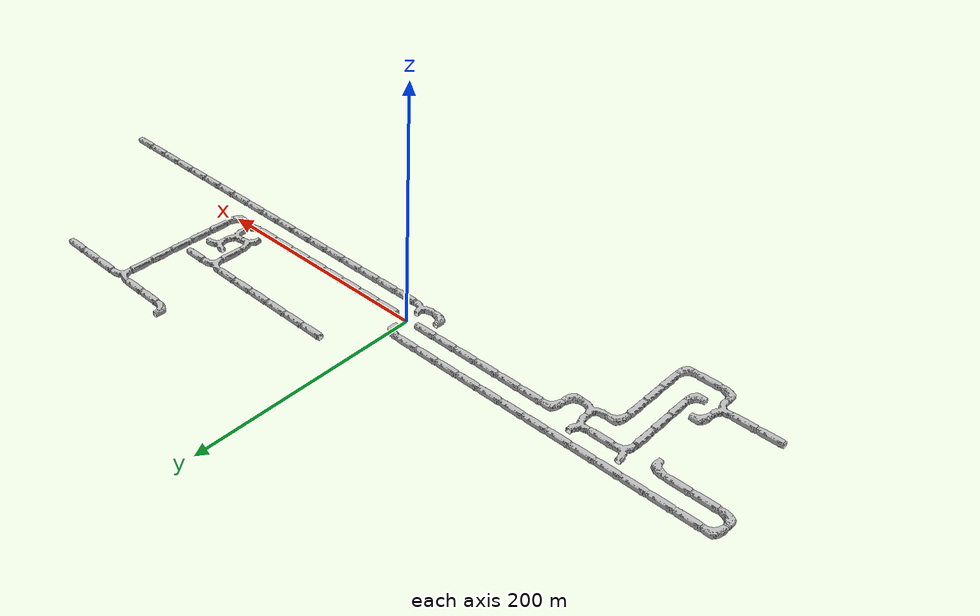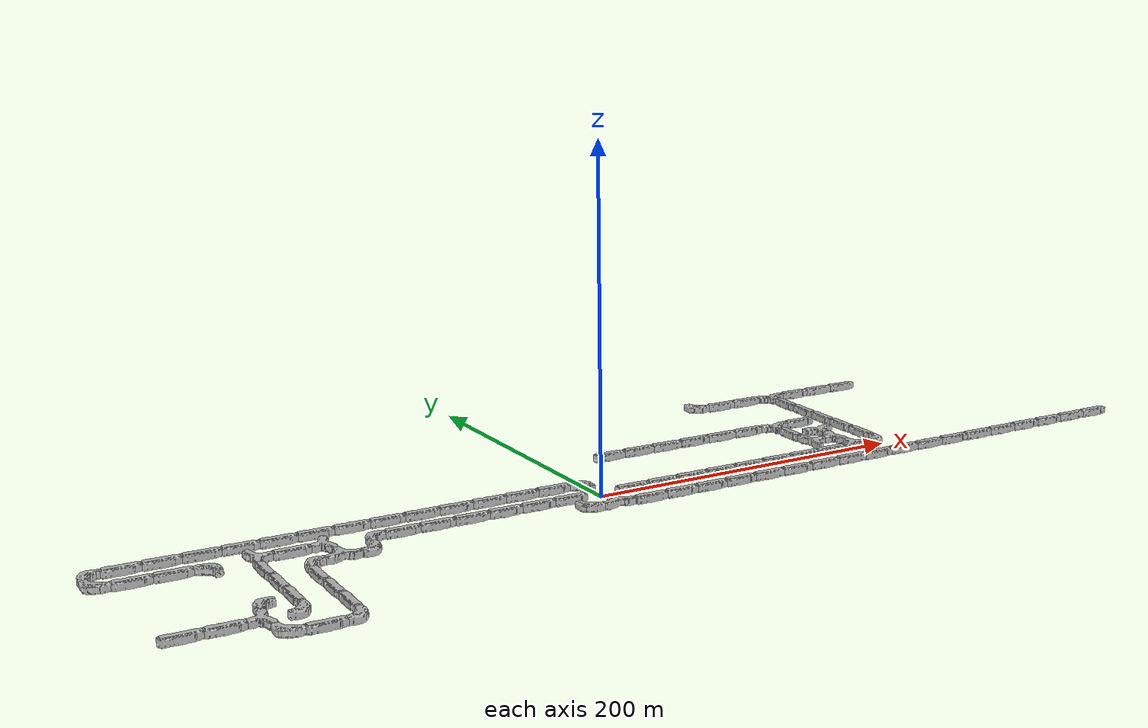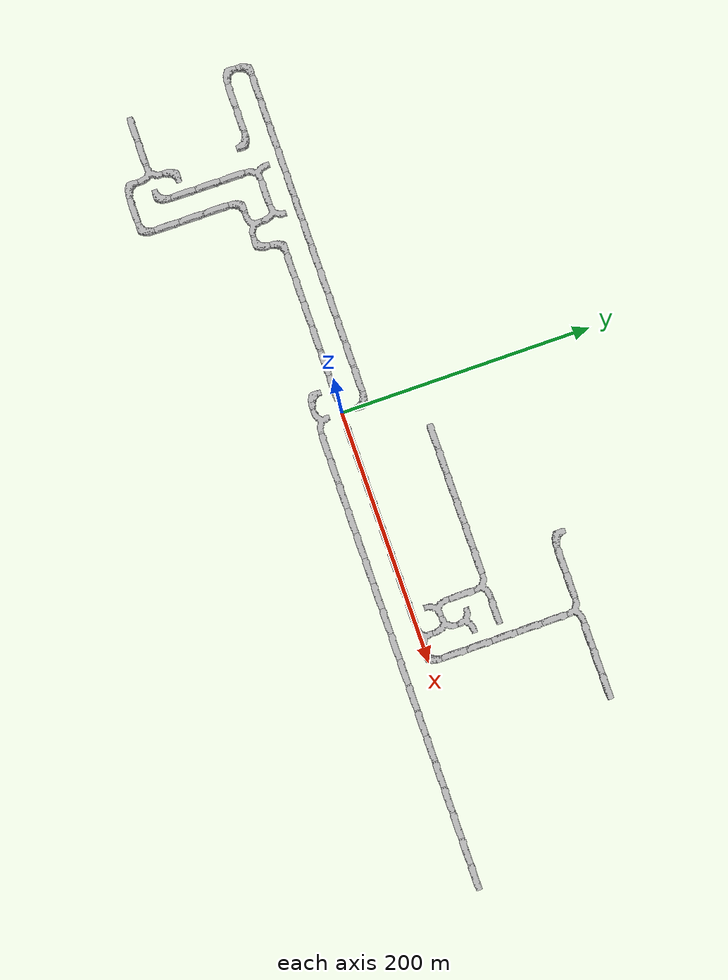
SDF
<sdf version="1.6">
 <world name="cave_2000_0">
  <include>
   <static>true</static>
   <name>cave_1_0</name>
   <pose>20 0 0 0 0 1.5707963267948966</pose>
   <uri>model://cave_straight_20m</uri>
  </include>
  <include>
   <static>true</static>
   <name>cave_2_0</name>
   <pose>40 0 0 0 0 1.5707963267948966</pose>
   <uri>model://cave_straight_20m</uri>
  </include>
  <include>
   <static>true</static>
   <name>cave_3_0</name>
   <pose>60 0 0 0 0 1.5707963267948966</pose>
   <uri>model://cave_straight_20m</uri>
  </include>
  <include>
   <static>true</static>
   <name>cave_4_0</name>
   <pose>80 0 0 0 0 1.5707963267948966</pose>
   <uri>model://cave_straight_20m</uri>
  </include>
  <include>
   <static>true</static>
   <name>cave_5_0</name>
   <pose>100 0 0 0 0 1.5707963267948966</pose>
   <uri>model://cave_straight_20m</uri>
  </include>
  <include>
   <static>true</static>
   <name>cave_6_0</name>
   <pose>120 0 0 0 0 1.5707963267948966</pose>
   <uri>model://cave_straight_20m</uri>
  </include>
  <include>
   <static>true</static>
   <name>cave_7_0</name>
   <pose>140 0 0 0 0 1.5707963267948966</pose>
   <uri>model://cave_straight_20m</uri>
  </include>
  <include>
   <static>true</static>
   <name>cave_8_0</name>
   <pose>160 0 0 0 0 1.5707963267948966</pose>
   <uri>model://cave_straight_20m</uri>
  </include>
  <include>
   <static>true</static>
   <name>cave_9_0</name>
   <pose>180 0 0 0 0 0.0</pose>
   <uri>model://cave_3way_20m</uri>
  </include>
  <include>
   <static>true</static>
   <name>cave_10_0</name>
   <pose>200 0 0 0 0 1.5707963267948966</pose>
   <uri>model://cave_L_20m</uri>
  </include>
  <include>
   <static>true</static>
   <name>cave_10_1</name>
   <pose>200 20 0 0 0 0.0</pose>
   <uri>model://cave_straight_20m</uri>
  </include>
  <include>
   <static>true</static>
   <name>cave_10_2</name>
   <pose>200 40 0 0 0 0.0</pose>
   <uri>model://cave_straight_20m</uri>
  </include>
  <include>
   <static>true</static>
   <name>cave_10_3</name>
   <pose>200 60 0 0 0 0.0</pose>
   <uri>model://cave_straight_20m</uri>
  </include>
  <include>
   <static>true</static>
   <name>cave_10_4</name>
   <pose>200 80 0 0 0 0.0</pose>
   <uri>model://cave_straight_20m</uri>
  </include>
  <include>
   <static>true</static>
   <name>cave_10_5</name>
   <pose>200 100 0 0 0 0.0</pose>
   <uri>model://cave_straight_20m</uri>
  </include>
  <include>
   <static>true</static>
   <name>cave_10_6</name>
   <pose>200 120 0 0 0 3.141592653589793</pose>
   <uri>model://cave_3way_20m</uri>
  </include>
  <include>
   <static>true</static>
   <name>cave_11_6</name>
   <pose>220 120 0 0 0 1.5707963267948966</pose>
   <uri>model://cave_straight_20m</uri>
  </include>
  <include>
   <static>true</static>
   <name>cave_12_6</name>
   <pose>240 120 0 0 0 1.5707963267948966</pose>
   <uri>model://cave_straight_20m</uri>
  </include>
  <include>
   <static>true</static>
   <name>cave_13_6</name>
   <pose>260 120 0 0 0 1.5707963267948966</pose>
   <uri>model://cave_straight_20m</uri>
  </include>
  <include>
   <static>true</static>
   <name>cave_9_6</name>
   <pose>180 120 0 0 0 1.5707963267948966</pose>
   <uri>model://cave_straight_20m</uri>
  </include>
  <include>
   <static>true</static>
   <name>cave_8_6</name>
   <pose>160 120 0 0 0 1.5707963267948966</pose>
   <uri>model://cave_straight_20m</uri>
  </include>
  <include>
   <static>true</static>
   <name>cave_7_6</name>
   <pose>140 120 0 0 0 0.0</pose>
   <uri>model://cave_L_20m</uri>
  </include>
  <include>
   <static>true</static>
   <name>cave_9_1</name>
   <pose>180 20 0 0 0 1.5707963267948966</pose>
   <uri>model://cave_3way_20m</uri>
  </include>
  <include>
   <static>true</static>
   <name>cave_8_1</name>
   <pose>160 20 0 0 0 -1.5707963267948966</pose>
   <uri>model://cave_3way_20m</uri>
  </include>
  <include>
   <static>true</static>
   <name>cave_8_2</name>
   <pose>160 40 0 0 0 0.0</pose>
   <uri>model://cave_straight_20m</uri>
  </include>
  <include>
   <static>true</static>
   <name>cave_8_3</name>
   <pose>160 60 0 0 0 3.141592653589793</pose>
   <uri>model://cave_3way_20m</uri>
  </include>
  <include>
   <static>true</static>
   <name>cave_9_3</name>
   <pose>180 60 0 0 0 1.5707963267948966</pose>
   <uri>model://cave_straight_20m</uri>
  </include>
  <include>
   <static>true</static>
   <name>cave_7_3</name>
   <pose>140 60 0 0 0 1.5707963267948966</pose>
   <uri>model://cave_straight_20m</uri>
  </include>
  <include>
   <static>true</static>
   <name>cave_6_3</name>
   <pose>120 60 0 0 0 1.5707963267948966</pose>
   <uri>model://cave_straight_20m</uri>
  </include>
  <include>
   <static>true</static>
   <name>cave_5_3</name>
   <pose>100 60 0 0 0 1.5707963267948966</pose>
   <uri>model://cave_straight_20m</uri>
  </include>
  <include>
   <static>true</static>
   <name>cave_4_3</name>
   <pose>80 60 0 0 0 1.5707963267948966</pose>
   <uri>model://cave_straight_20m</uri>
  </include>
  <include>
   <static>true</static>
   <name>cave_3_3</name>
   <pose>60 60 0 0 0 1.5707963267948966</pose>
   <uri>model://cave_straight_20m</uri>
  </include>
  <include>
   <static>true</static>
   <name>cave_2_3</name>
   <pose>40 60 0 0 0 1.5707963267948966</pose>
   <uri>model://cave_straight_20m</uri>
  </include>
  <include>
   <static>true</static>
   <name>cave_9_2</name>
   <pose>180 40 0 0 0 3.141592653589793</pose>
   <uri>model://cave_3way_20m</uri>
  </include>
  <include>
   <static>true</static>
   <name>cave_0_-1</name>
   <pose>0 -20 0 0 0 0.0</pose>
   <uri>model://cave_3way_20m</uri>
  </include>
  <include>
   <static>true</static>
   <name>cave_1_-1</name>
   <pose>20 -20 0 0 0 1.5707963267948966</pose>
   <uri>model://cave_straight_20m</uri>
  </include>
  <include>
   <static>true</static>
   <name>cave_2_-1</name>
   <pose>40 -20 0 0 0 1.5707963267948966</pose>
   <uri>model://cave_straight_20m</uri>
  </include>
  <include>
   <static>true</static>
   <name>cave_3_-1</name>
   <pose>60 -20 0 0 0 1.5707963267948966</pose>
   <uri>model://cave_straight_20m</uri>
  </include>
  <include>
   <static>true</static>
   <name>cave_4_-1</name>
   <pose>80 -20 0 0 0 1.5707963267948966</pose>
   <uri>model://cave_straight_20m</uri>
  </include>
  <include>
   <static>true</static>
   <name>cave_5_-1</name>
   <pose>100 -20 0 0 0 1.5707963267948966</pose>
   <uri>model://cave_straight_20m</uri>
  </include>
  <include>
   <static>true</static>
   <name>cave_6_-1</name>
   <pose>120 -20 0 0 0 1.5707963267948966</pose>
   <uri>model://cave_straight_20m</uri>
  </include>
  <include>
   <static>true</static>
   <name>cave_7_-1</name>
   <pose>140 -20 0 0 0 1.5707963267948966</pose>
   <uri>model://cave_straight_20m</uri>
  </include>
  <include>
   <static>true</static>
   <name>cave_8_-1</name>
   <pose>160 -20 0 0 0 1.5707963267948966</pose>
   <uri>model://cave_straight_20m</uri>
  </include>
  <include>
   <static>true</static>
   <name>cave_9_-1</name>
   <pose>180 -20 0 0 0 1.5707963267948966</pose>
   <uri>model://cave_straight_20m</uri>
  </include>
  <include>
   <static>true</static>
   <name>cave_10_-1</name>
   <pose>200 -20 0 0 0 1.5707963267948966</pose>
   <uri>model://cave_straight_20m</uri>
  </include>
  <include>
   <static>true</static>
   <name>cave_11_-1</name>
   <pose>220 -20 0 0 0 1.5707963267948966</pose>
   <uri>model://cave_straight_20m</uri>
  </include>
  <include>
   <static>true</static>
   <name>cave_12_-1</name>
   <pose>240 -20 0 0 0 1.5707963267948966</pose>
   <uri>model://cave_straight_20m</uri>
  </include>
  <include>
   <static>true</static>
   <name>cave_13_-1</name>
   <pose>260 -20 0 0 0 1.5707963267948966</pose>
   <uri>model://cave_straight_20m</uri>
  </include>
  <include>
   <static>true</static>
   <name>cave_14_-1</name>
   <pose>280 -20 0 0 0 1.5707963267948966</pose>
   <uri>model://cave_straight_20m</uri>
  </include>
  <include>
   <static>true</static>
   <name>cave_15_-1</name>
   <pose>300 -20 0 0 0 1.5707963267948966</pose>
   <uri>model://cave_straight_20m</uri>
  </include>
  <include>
   <static>true</static>
   <name>cave_16_-1</name>
   <pose>320 -20 0 0 0 1.5707963267948966</pose>
   <uri>model://cave_straight_20m</uri>
  </include>
  <include>
   <static>true</static>
   <name>cave_17_-1</name>
   <pose>340 -20 0 0 0 1.5707963267948966</pose>
   <uri>model://cave_straight_20m</uri>
  </include>
  <include>
   <static>true</static>
   <name>cave_18_-1</name>
   <pose>360 -20 0 0 0 1.5707963267948966</pose>
   <uri>model://cave_straight_20m</uri>
  </include>
  <include>
   <static>true</static>
   <name>cave_-1_-1</name>
   <pose>-20 -20 0 0 0 0.0</pose>
   <uri>model://cave_L_20m</uri>
  </include>
  <include>
   <static>true</static>
   <name>cave_-1_0</name>
   <pose>-20 0 0 0 0 1.5707963267948966</pose>
   <uri>model://cave_straight_20m</uri>
  </include>
  <include>
   <static>true</static>
   <name>cave_-2_0</name>
   <pose>-40 0 0 0 0 1.5707963267948966</pose>
   <uri>model://cave_straight_20m</uri>
  </include>
  <include>
   <static>true</static>
   <name>cave_-3_0</name>
   <pose>-60 0 0 0 0 1.5707963267948966</pose>
   <uri>model://cave_straight_20m</uri>
  </include>
  <include>
   <static>true</static>
   <name>cave_-4_0</name>
   <pose>-80 0 0 0 0 1.5707963267948966</pose>
   <uri>model://cave_straight_20m</uri>
  </include>
  <include>
   <static>true</static>
   <name>cave_-5_0</name>
   <pose>-100 0 0 0 0 1.5707963267948966</pose>
   <uri>model://cave_straight_20m</uri>
  </include>
  <include>
   <static>true</static>
   <name>cave_-6_0</name>
   <pose>-120 0 0 0 0 1.5707963267948966</pose>
   <uri>model://cave_straight_20m</uri>
  </include>
  <include>
   <static>true</static>
   <name>cave_-7_0</name>
   <pose>-140 0 0 0 0 -1.5707963267948966</pose>
   <uri>model://cave_L_20m</uri>
  </include>
  <include>
   <static>true</static>
   <name>cave_-7_-1</name>
   <pose>-140 -20 0 0 0 1.5707963267948966</pose>
   <uri>model://cave_L_20m</uri>
  </include>
  <include>
   <static>true</static>
   <name>cave_-8_-1</name>
   <pose>-160 -20 0 0 0 0.0</pose>
   <uri>model://cave_3way_20m</uri>
  </include>
  <include>
   <static>true</static>
   <name>cave_-9_-1</name>
   <pose>-180 -20 0 0 0 -1.5707963267948966</pose>
   <uri>model://cave_L_20m</uri>
  </include>
  <include>
   <static>true</static>
   <name>cave_-9_-2</name>
   <pose>-180 -40 0 0 0 0.0</pose>
   <uri>model://cave_straight_20m</uri>
  </include>
  <include>
   <static>true</static>
   <name>cave_-9_-3</name>
   <pose>-180 -60 0 0 0 0.0</pose>
   <uri>model://cave_straight_20m</uri>
  </include>
  <include>
   <static>true</static>
   <name>cave_-9_-4</name>
   <pose>-180 -80 0 0 0 0.0</pose>
   <uri>model://cave_straight_20m</uri>
  </include>
  <include>
   <static>true</static>
   <name>cave_-9_-5</name>
   <pose>-180 -100 0 0 0 1.5707963267948966</pose>
   <uri>model://cave_L_20m</uri>
  </include>
  <include>
   <static>true</static>
   <name>cave_-10_-5</name>
   <pose>-200 -100 0 0 0 1.5707963267948966</pose>
   <uri>model://cave_straight_20m</uri>
  </include>
  <include>
   <static>true</static>
   <name>cave_-11_-5</name>
   <pose>-220 -100 0 0 0 0.0</pose>
   <uri>model://cave_L_20m</uri>
  </include>
  <include>
   <static>true</static>
   <name>cave_-11_-4</name>
   <pose>-220 -80 0 0 0 1.5707963267948966</pose>
   <uri>model://cave_3way_20m</uri>
  </include>
  <include>
   <static>true</static>
   <name>cave_-12_-4</name>
   <pose>-240 -80 0 0 0 1.5707963267948966</pose>
   <uri>model://cave_straight_20m</uri>
  </include>
  <include>
   <static>true</static>
   <name>cave_-13_-4</name>
   <pose>-260 -80 0 0 0 1.5707963267948966</pose>
   <uri>model://cave_straight_20m</uri>
  </include>
  <include>
   <static>true</static>
   <name>cave_-11_-3</name>
   <pose>-220 -60 0 0 0 -1.5707963267948966</pose>
   <uri>model://cave_L_20m</uri>
  </include>
  <include>
   <static>true</static>
   <name>cave_-8_0</name>
   <pose>-160 0 0 0 0 1.5707963267948966</pose>
   <uri>model://cave_3way_20m</uri>
  </include>
  <include>
   <static>true</static>
   <name>cave_-9_0</name>
   <pose>-180 0 0 0 0 1.5707963267948966</pose>
   <uri>model://cave_straight_20m</uri>
  </include>
  <include>
   <static>true</static>
   <name>cave_-10_0</name>
   <pose>-200 0 0 0 0 -1.5707963267948966</pose>
   <uri>model://cave_3way_20m</uri>
  </include>
  <include>
   <static>true</static>
   <name>cave_-10_-1</name>
   <pose>-200 -20 0 0 0 0.0</pose>
   <uri>model://cave_straight_20m</uri>
  </include>
  <include>
   <static>true</static>
   <name>cave_-10_-2</name>
   <pose>-200 -40 0 0 0 0.0</pose>
   <uri>model://cave_straight_20m</uri>
  </include>
  <include>
   <static>true</static>
   <name>cave_-10_-3</name>
   <pose>-200 -60 0 0 0 0.0</pose>
   <uri>model://cave_straight_20m</uri>
  </include>
  <include>
   <static>true</static>
   <name>cave_-10_-4</name>
   <pose>-200 -80 0 0 0 1.5707963267948966</pose>
   <uri>model://cave_L_20m</uri>
  </include>
  <include>
   <static>true</static>
   <name>cave_0_1</name>
   <pose>0 20 0 0 0 3.141592653589793</pose>
   <uri>model://cave_L_20m</uri>
  </include>
  <include>
   <static>true</static>
   <name>cave_-1_1</name>
   <pose>-20 20 0 0 0 1.5707963267948966</pose>
   <uri>model://cave_straight_20m</uri>
  </include>
  <include>
   <static>true</static>
   <name>cave_-2_1</name>
   <pose>-40 20 0 0 0 1.5707963267948966</pose>
   <uri>model://cave_straight_20m</uri>
  </include>
  <include>
   <static>true</static>
   <name>cave_-3_1</name>
   <pose>-60 20 0 0 0 1.5707963267948966</pose>
   <uri>model://cave_straight_20m</uri>
  </include>
  <include>
   <static>true</static>
   <name>cave_-4_1</name>
   <pose>-80 20 0 0 0 1.5707963267948966</pose>
   <uri>model://cave_straight_20m</uri>
  </include>
  <include>
   <static>true</static>
   <name>cave_-5_1</name>
   <pose>-100 20 0 0 0 1.5707963267948966</pose>
   <uri>model://cave_straight_20m</uri>
  </include>
  <include>
   <static>true</static>
   <name>cave_-6_1</name>
   <pose>-120 20 0 0 0 1.5707963267948966</pose>
   <uri>model://cave_straight_20m</uri>
  </include>
  <include>
   <static>true</static>
   <name>cave_-7_1</name>
   <pose>-140 20 0 0 0 1.5707963267948966</pose>
   <uri>model://cave_straight_20m</uri>
  </include>
  <include>
   <static>true</static>
   <name>cave_-8_1</name>
   <pose>-160 20 0 0 0 1.5707963267948966</pose>
   <uri>model://cave_straight_20m</uri>
  </include>
  <include>
   <static>true</static>
   <name>cave_-9_1</name>
   <pose>-180 20 0 0 0 1.5707963267948966</pose>
   <uri>model://cave_straight_20m</uri>
  </include>
  <include>
   <static>true</static>
   <name>cave_-10_1</name>
   <pose>-200 20 0 0 0 1.5707963267948966</pose>
   <uri>model://cave_straight_20m</uri>
  </include>
  <include>
   <static>true</static>
   <name>cave_-11_1</name>
   <pose>-220 20 0 0 0 1.5707963267948966</pose>
   <uri>model://cave_straight_20m</uri>
  </include>
  <include>
   <static>true</static>
   <name>cave_-12_1</name>
   <pose>-240 20 0 0 0 1.5707963267948966</pose>
   <uri>model://cave_straight_20m</uri>
  </include>
  <include>
   <static>true</static>
   <name>cave_-13_1</name>
   <pose>-260 20 0 0 0 1.5707963267948966</pose>
   <uri>model://cave_straight_20m</uri>
  </include>
  <include>
   <static>true</static>
   <name>cave_-14_1</name>
   <pose>-280 20 0 0 0 -1.5707963267948966</pose>
   <uri>model://cave_L_20m</uri>
  </include>
  <include>
   <static>true</static>
   <name>cave_-14_0</name>
   <pose>-280 0 0 0 0 0.0</pose>
   <uri>model://cave_L_20m</uri>
  </include>
  <include>
   <static>true</static>
   <name>cave_-13_0</name>
   <pose>-260 0 0 0 0 1.5707963267948966</pose>
   <uri>model://cave_straight_20m</uri>
  </include>
  <include>
   <static>true</static>
   <name>cave_-12_0</name>
   <pose>-240 0 0 0 0 1.5707963267948966</pose>
   <uri>model://cave_straight_20m</uri>
  </include>
  <include>
   <static>true</static>
   <name>cave_-11_0</name>
   <pose>-220 0 0 0 0 3.141592653589793</pose>
   <uri>model://cave_L_20m</uri>
  </include>
 </world>
</sdf>

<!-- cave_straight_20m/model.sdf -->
<sdf version="1.6">
  <model name="cave_straight_20m">
    <static>true</static>
    <link name="base">
      <pose>0 0 0 0 0 0</pose>
      <collision name="base_collision">
        <pose>0 0 0 0 0 0</pose>
        <geometry>
          <mesh>
            <uri>model://cave_straight_20m/meshes/cave_straight_20m.dae</uri>
          </mesh>
        </geometry>
        <surface>
          <contact>
             <collide_bitmask>0xffff</collide_bitmask>
          </contact>
          <friction>
            <ode>
              <mu>100</mu>
              <mu2>50</mu2>
            </ode>
          </friction>
        </surface>
      </collision>
      <visual name="base_visual">
        <pose>0 0 0 0 0 0</pose>
        <cast_shadows>false</cast_shadows>
        <geometry>
          <mesh>
            <uri>model://cave_straight_20m/meshes/cave_straight_20m.dae</uri>
          </mesh>
        </geometry>
      </visual>
    </link>
  </model>
</sdf>

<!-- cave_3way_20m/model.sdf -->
<sdf version="1.6">
  <model name="cave_3way_20m">
    <static>true</static>
    <link name="base">
      <pose>0 0 0 0 0 0</pose>
      <collision name="base_collision">
        <pose>0 0 0 0 0 0</pose>
        <geometry>
          <mesh>
            <uri>model://cave_3way_20m/meshes/cave_3way_20m.dae</uri>
          </mesh>
        </geometry>
        <surface>
          <contact>
             <collide_bitmask>0xffff</collide_bitmask>
          </contact>
          <friction>
            <ode>
              <mu>100</mu>
              <mu2>50</mu2>
            </ode>
          </friction>
        </surface>
      </collision>
      <visual name="base_visual">
        <cast_shadows>false</cast_shadows>
        <pose>0 0 0 0 0 0</pose>
        <geometry>
          <mesh>
            <uri>model://cave_3way_20m/meshes/cave_3way_20m.dae</uri>
          </mesh>
        </geometry>
      </visual>
    </link>
  </model>
</sdf>

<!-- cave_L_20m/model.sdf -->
<sdf version="1.6">
  <model name="cave_L_20m">
    <static>true</static>
    <link name="base">
      <pose>0 0 0 0 0 0</pose>
      <collision name="base_collision">
        <pose>0 0 0 0 0 0</pose>
        <geometry>
          <mesh>
            <uri>model://cave_L_20m/meshes/cave_L_20m.dae</uri>
          </mesh>
        </geometry>
        <surface>
          <contact>
             <collide_bitmask>0xffff</collide_bitmask>
          </contact>
          <friction>
            <ode>
              <mu>100</mu>
              <mu2>50</mu2>
            </ode>
          </friction>
        </surface>
      </collision>
      <visual name="base_visual">
        <pose>0 0 0 0 0 0</pose>
        <cast_shadows>false</cast_shadows>
        <geometry>
          <mesh>
            <uri>model://cave_L_20m/meshes/cave_L_20m.dae</uri>
          </mesh>
        </geometry>
      </visual>
    </link>
  </model>
</sdf>
